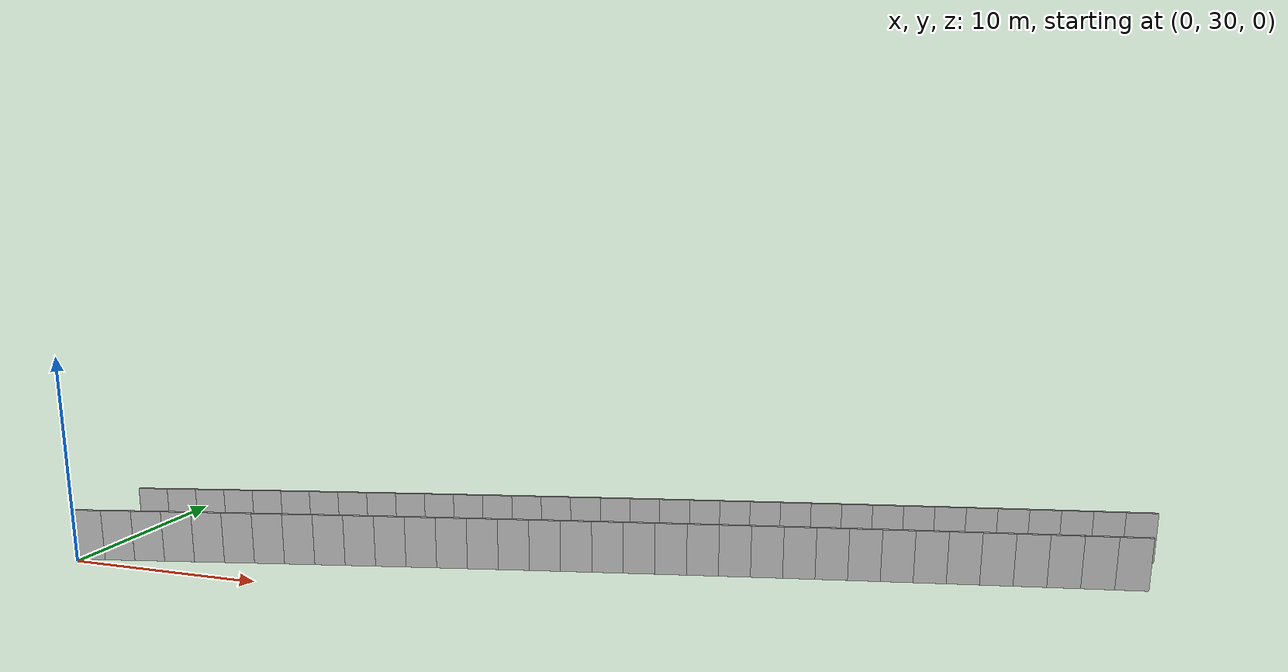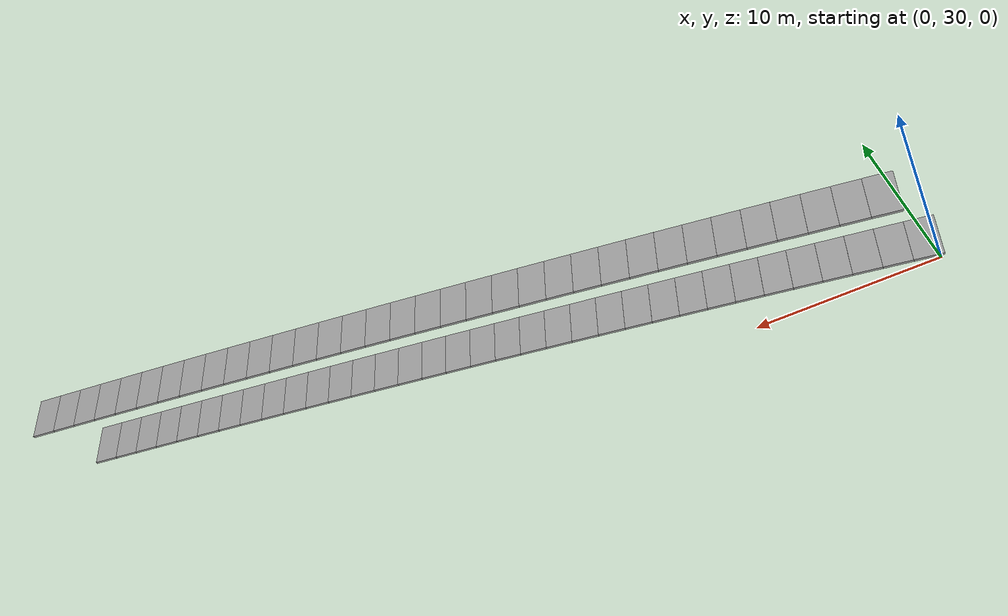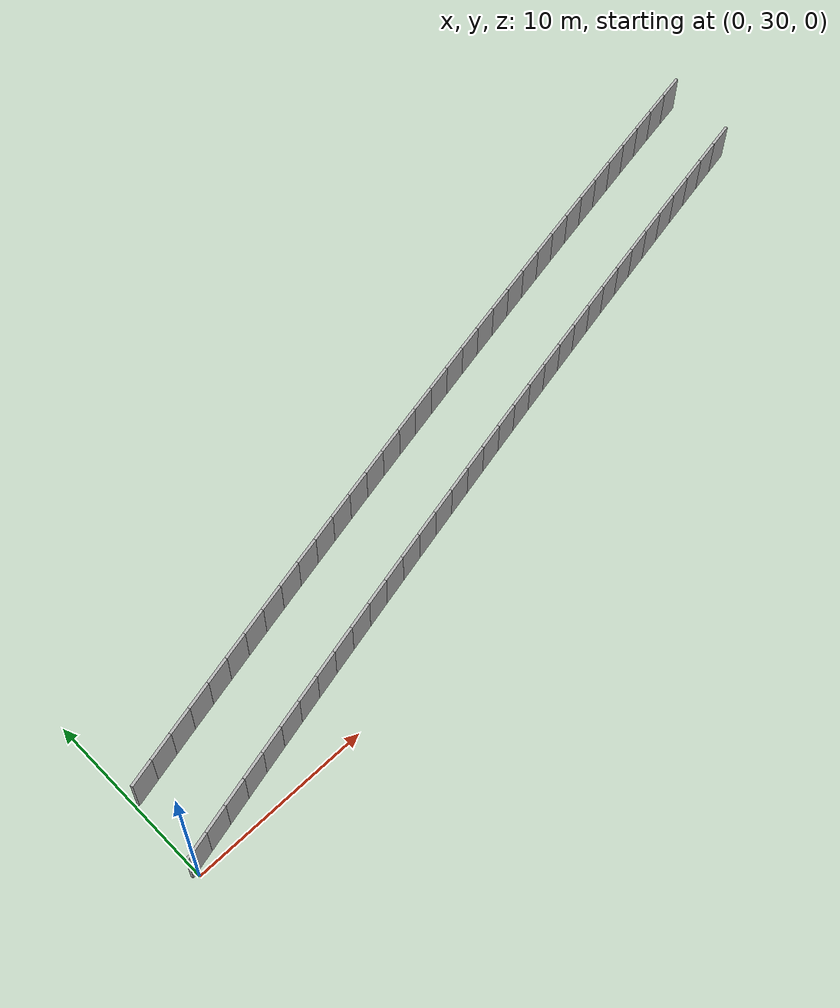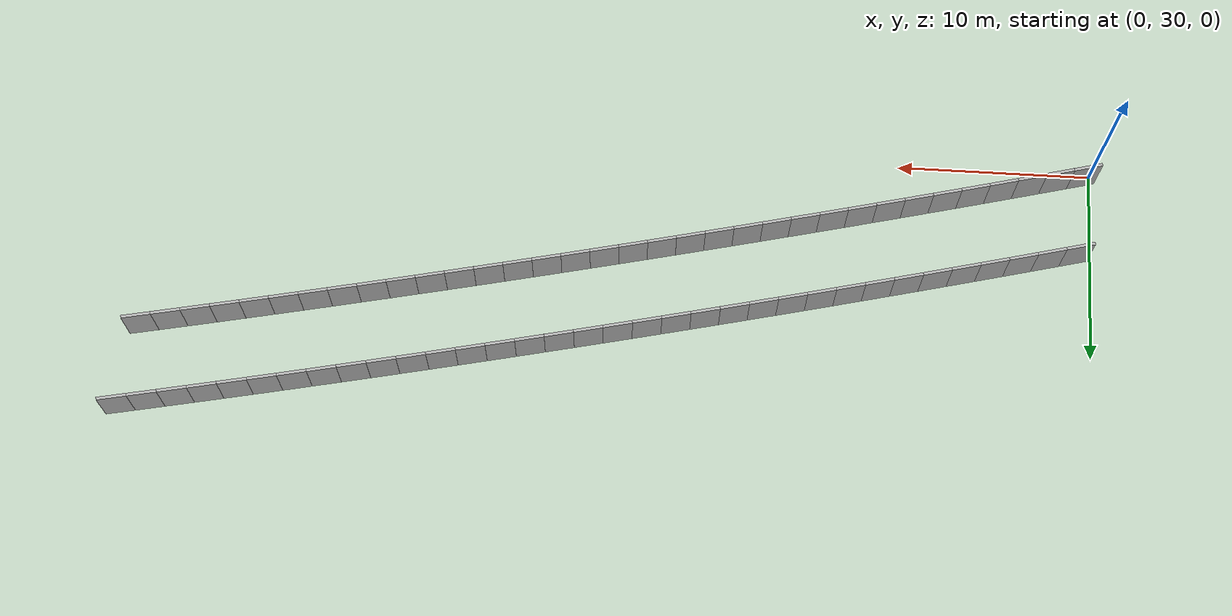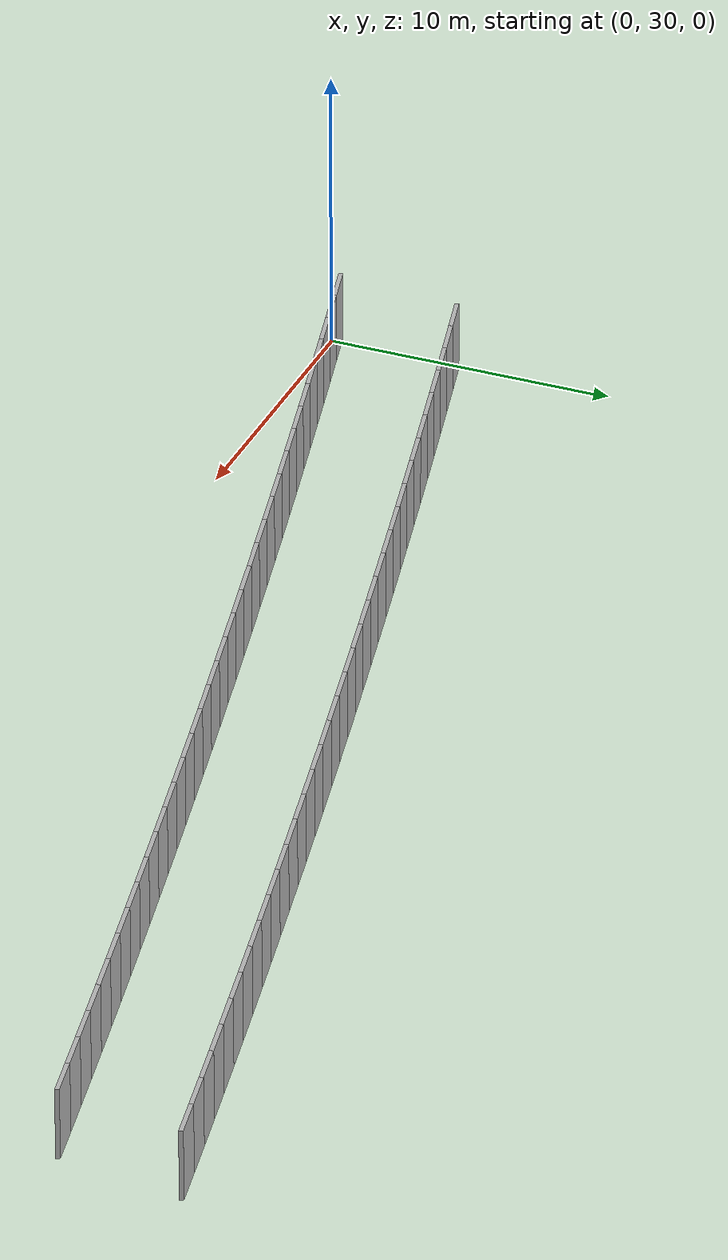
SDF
<?xml version="1.0" ?>
<sdf version="1.6">
  <model name="sps_1946">
    <pose frame="">0 0 0 0 -0 0</pose>
    <static>1</static>
    <self_collide>0</self_collide>
    <allow_auto_disable>0</allow_auto_disable>
    <link name="Wall2987">
      <kinematic>0</kinematic>
      <gravity>1</gravity>
      <self_collide>0</self_collide>
      <collision name="collision">
        <geometry>
          <box>
            <size>1.49635 0.15 2.5</size>
          </box>
        </geometry>
        <pose frame="">0 0 0 0 -0 0</pose>
      </collision>
      <visual name="visual">
        <geometry>
          <box>
            <size>1.49635 0.15 2.5</size>
          </box>
        </geometry>
        <pose frame="">0 0 0 0 -0 0</pose>
        <cast_shadows>1</cast_shadows>
        <transparency>0.0</transparency>
      </visual>
      <pose frame="">48.6193 41.263 1.25 0 0 -2.94586</pose>
    </link>
    <link name="Wall2988">
      <kinematic>0</kinematic>
      <gravity>1</gravity>
      <self_collide>0</self_collide>
      <collision name="collision">
        <geometry>
          <box>
            <size>1.49668 0.15 2.5</size>
          </box>
        </geometry>
        <pose frame="">0 0 0 0 -0 0</pose>
      </collision>
      <visual name="visual">
        <geometry>
          <box>
            <size>1.49668 0.15 2.5</size>
          </box>
        </geometry>
        <pose frame="">0 0 0 0 -0 0</pose>
        <cast_shadows>1</cast_shadows>
        <transparency>0.0</transparency>
      </visual>
      <pose frame="">47.1517 40.9707 1.25 0 0 -2.94412</pose>
    </link>
    <link name="Wall2989">
      <kinematic>0</kinematic>
      <gravity>1</gravity>
      <self_collide>0</self_collide>
      <collision name="collision">
        <geometry>
          <box>
            <size>1.49624 0.15 2.5</size>
          </box>
        </geometry>
        <pose frame="">0 0 0 0 -0 0</pose>
      </collision>
      <visual name="visual">
        <geometry>
          <box>
            <size>1.49624 0.15 2.5</size>
          </box>
        </geometry>
        <pose frame="">0 0 0 0 -0 0</pose>
        <cast_shadows>1</cast_shadows>
        <transparency>0.0</transparency>
      </visual>
      <pose frame="">45.6845 40.6762 1.25 0 0 -2.94289</pose>
    </link>
    <link name="Wall2990">
      <kinematic>0</kinematic>
      <gravity>1</gravity>
      <self_collide>0</self_collide>
      <collision name="collision">
        <geometry>
          <box>
            <size>1.49663 0.15 2.5</size>
          </box>
        </geometry>
        <pose frame="">0 0 0 0 -0 0</pose>
      </collision>
      <visual name="visual">
        <geometry>
          <box>
            <size>1.49663 0.15 2.5</size>
          </box>
        </geometry>
        <pose frame="">0 0 0 0 -0 0</pose>
        <cast_shadows>1</cast_shadows>
        <transparency>0.0</transparency>
      </visual>
      <pose frame="">44.2178 40.3794 1.25 0 0 -2.94099</pose>
    </link>
    <link name="Wall2991">
      <kinematic>0</kinematic>
      <gravity>1</gravity>
      <self_collide>0</self_collide>
      <collision name="collision">
        <geometry>
          <box>
            <size>1.49647 0.15 2.5</size>
          </box>
        </geometry>
        <pose frame="">0 0 0 0 -0 0</pose>
      </collision>
      <visual name="visual">
        <geometry>
          <box>
            <size>1.49647 0.15 2.5</size>
          </box>
        </geometry>
        <pose frame="">0 0 0 0 -0 0</pose>
        <cast_shadows>1</cast_shadows>
        <transparency>0.0</transparency>
      </visual>
      <pose frame="">42.7515 40.0801 1.25 0 0 -2.93947</pose>
    </link>
    <link name="Wall2992">
      <kinematic>0</kinematic>
      <gravity>1</gravity>
      <self_collide>0</self_collide>
      <collision name="collision">
        <geometry>
          <box>
            <size>1.49653 0.15 2.5</size>
          </box>
        </geometry>
        <pose frame="">0 0 0 0 -0 0</pose>
      </collision>
      <visual name="visual">
        <geometry>
          <box>
            <size>1.49653 0.15 2.5</size>
          </box>
        </geometry>
        <pose frame="">0 0 0 0 -0 0</pose>
        <cast_shadows>1</cast_shadows>
        <transparency>0.0</transparency>
      </visual>
      <pose frame="">41.2857 39.7785 1.25 0 0 -2.93785</pose>
    </link>
    <link name="Wall2993">
      <kinematic>0</kinematic>
      <gravity>1</gravity>
      <self_collide>0</self_collide>
      <collision name="collision">
        <geometry>
          <box>
            <size>1.49647 0.15 2.5</size>
          </box>
        </geometry>
        <pose frame="">0 0 0 0 -0 0</pose>
      </collision>
      <visual name="visual">
        <geometry>
          <box>
            <size>1.49647 0.15 2.5</size>
          </box>
        </geometry>
        <pose frame="">0 0 0 0 -0 0</pose>
        <cast_shadows>1</cast_shadows>
        <transparency>0.0</transparency>
      </visual>
      <pose frame="">39.8204 39.4745 1.25 0 0 -2.93622</pose>
    </link>
    <link name="Wall2994">
      <kinematic>0</kinematic>
      <gravity>1</gravity>
      <self_collide>0</self_collide>
      <collision name="collision">
        <geometry>
          <box>
            <size>1.49652 0.15 2.5</size>
          </box>
        </geometry>
        <pose frame="">0 0 0 0 -0 0</pose>
      </collision>
      <visual name="visual">
        <geometry>
          <box>
            <size>1.49652 0.15 2.5</size>
          </box>
        </geometry>
        <pose frame="">0 0 0 0 -0 0</pose>
        <cast_shadows>1</cast_shadows>
        <transparency>0.0</transparency>
      </visual>
      <pose frame="">38.3556 39.1682 1.25 0 0 -2.93469</pose>
    </link>
    <link name="Wall2995">
      <kinematic>0</kinematic>
      <gravity>1</gravity>
      <self_collide>0</self_collide>
      <collision name="collision">
        <geometry>
          <box>
            <size>1.49636 0.15 2.5</size>
          </box>
        </geometry>
        <pose frame="">0 0 0 0 -0 0</pose>
      </collision>
      <visual name="visual">
        <geometry>
          <box>
            <size>1.49636 0.15 2.5</size>
          </box>
        </geometry>
        <pose frame="">0 0 0 0 -0 0</pose>
        <cast_shadows>1</cast_shadows>
        <transparency>0.0</transparency>
      </visual>
      <pose frame="">36.8913 38.8597 1.25 0 0 -2.93321</pose>
    </link>
    <link name="Wall2996">
      <kinematic>0</kinematic>
      <gravity>1</gravity>
      <self_collide>0</self_collide>
      <collision name="collision">
        <geometry>
          <box>
            <size>1.49651 0.15 2.5</size>
          </box>
        </geometry>
        <pose frame="">0 0 0 0 -0 0</pose>
      </collision>
      <visual name="visual">
        <geometry>
          <box>
            <size>1.49651 0.15 2.5</size>
          </box>
        </geometry>
        <pose frame="">0 0 0 0 -0 0</pose>
        <cast_shadows>1</cast_shadows>
        <transparency>0.0</transparency>
      </visual>
      <pose frame="">35.4275 38.5489 1.25 0 0 -2.93156</pose>
    </link>
    <link name="Wall2997">
      <kinematic>0</kinematic>
      <gravity>1</gravity>
      <self_collide>0</self_collide>
      <collision name="collision">
        <geometry>
          <box>
            <size>1.49659 0.15 2.5</size>
          </box>
        </geometry>
        <pose frame="">0 0 0 0 -0 0</pose>
      </collision>
      <visual name="visual">
        <geometry>
          <box>
            <size>1.49659 0.15 2.5</size>
          </box>
        </geometry>
        <pose frame="">0 0 0 0 -0 0</pose>
        <cast_shadows>1</cast_shadows>
        <transparency>0.0</transparency>
      </visual>
      <pose frame="">33.964 38.2357 1.25 0 0 -2.92994</pose>
    </link>
    <link name="Wall2998">
      <kinematic>0</kinematic>
      <gravity>1</gravity>
      <self_collide>0</self_collide>
      <collision name="collision">
        <geometry>
          <box>
            <size>1.49651 0.15 2.5</size>
          </box>
        </geometry>
        <pose frame="">0 0 0 0 -0 0</pose>
      </collision>
      <visual name="visual">
        <geometry>
          <box>
            <size>1.49651 0.15 2.5</size>
          </box>
        </geometry>
        <pose frame="">0 0 0 0 -0 0</pose>
        <cast_shadows>1</cast_shadows>
        <transparency>0.0</transparency>
      </visual>
      <pose frame="">32.5012 37.9201 1.25 0 0 -2.92826</pose>
    </link>
    <link name="Wall2999">
      <kinematic>0</kinematic>
      <gravity>1</gravity>
      <self_collide>0</self_collide>
      <collision name="collision">
        <geometry>
          <box>
            <size>1.49661 0.15 2.5</size>
          </box>
        </geometry>
        <pose frame="">0 0 0 0 -0 0</pose>
      </collision>
      <visual name="visual">
        <geometry>
          <box>
            <size>1.49661 0.15 2.5</size>
          </box>
        </geometry>
        <pose frame="">0 0 0 0 -0 0</pose>
        <cast_shadows>1</cast_shadows>
        <transparency>0.0</transparency>
      </visual>
      <pose frame="">31.0387 37.6022 1.25 0 0 -2.92682</pose>
    </link>
    <link name="Wall3000">
      <kinematic>0</kinematic>
      <gravity>1</gravity>
      <self_collide>0</self_collide>
      <collision name="collision">
        <geometry>
          <box>
            <size>1.49649 0.15 2.5</size>
          </box>
        </geometry>
        <pose frame="">0 0 0 0 -0 0</pose>
      </collision>
      <visual name="visual">
        <geometry>
          <box>
            <size>1.49649 0.15 2.5</size>
          </box>
        </geometry>
        <pose frame="">0 0 0 0 -0 0</pose>
        <cast_shadows>1</cast_shadows>
        <transparency>0.0</transparency>
      </visual>
      <pose frame="">29.5768 37.2821 1.25 0 0 -2.92526</pose>
    </link>
    <link name="Wall3001">
      <kinematic>0</kinematic>
      <gravity>1</gravity>
      <self_collide>0</self_collide>
      <collision name="collision">
        <geometry>
          <box>
            <size>1.49641 0.15 2.5</size>
          </box>
        </geometry>
        <pose frame="">0 0 0 0 -0 0</pose>
      </collision>
      <visual name="visual">
        <geometry>
          <box>
            <size>1.49641 0.15 2.5</size>
          </box>
        </geometry>
        <pose frame="">0 0 0 0 -0 0</pose>
        <cast_shadows>1</cast_shadows>
        <transparency>0.0</transparency>
      </visual>
      <pose frame="">28.1155 36.9597 1.25 0 0 -2.92361</pose>
    </link>
    <link name="Wall3002">
      <kinematic>0</kinematic>
      <gravity>1</gravity>
      <self_collide>0</self_collide>
      <collision name="collision">
        <geometry>
          <box>
            <size>1.49651 0.15 2.5</size>
          </box>
        </geometry>
        <pose frame="">0 0 0 0 -0 0</pose>
      </collision>
      <visual name="visual">
        <geometry>
          <box>
            <size>1.49651 0.15 2.5</size>
          </box>
        </geometry>
        <pose frame="">0 0 0 0 -0 0</pose>
        <cast_shadows>1</cast_shadows>
        <transparency>0.0</transparency>
      </visual>
      <pose frame="">26.6547 36.6349 1.25 0 0 -2.922</pose>
    </link>
    <link name="Wall3003">
      <kinematic>0</kinematic>
      <gravity>1</gravity>
      <self_collide>0</self_collide>
      <collision name="collision">
        <geometry>
          <box>
            <size>1.49645 0.15 2.5</size>
          </box>
        </geometry>
        <pose frame="">0 0 0 0 -0 0</pose>
      </collision>
      <visual name="visual">
        <geometry>
          <box>
            <size>1.49645 0.15 2.5</size>
          </box>
        </geometry>
        <pose frame="">0 0 0 0 -0 0</pose>
        <cast_shadows>1</cast_shadows>
        <transparency>0.0</transparency>
      </visual>
      <pose frame="">25.1944 36.3078 1.25 0 0 -2.92049</pose>
    </link>
    <link name="Wall3004">
      <kinematic>0</kinematic>
      <gravity>1</gravity>
      <self_collide>0</self_collide>
      <collision name="collision">
        <geometry>
          <box>
            <size>1.49657 0.15 2.5</size>
          </box>
        </geometry>
        <pose frame="">0 0 0 0 -0 0</pose>
      </collision>
      <visual name="visual">
        <geometry>
          <box>
            <size>1.49657 0.15 2.5</size>
          </box>
        </geometry>
        <pose frame="">0 0 0 0 -0 0</pose>
        <cast_shadows>1</cast_shadows>
        <transparency>0.0</transparency>
      </visual>
      <pose frame="">23.7346 35.9784 1.25 0 0 -2.91883</pose>
    </link>
    <link name="Wall3005">
      <kinematic>0</kinematic>
      <gravity>1</gravity>
      <self_collide>0</self_collide>
      <collision name="collision">
        <geometry>
          <box>
            <size>1.49637 0.15 2.5</size>
          </box>
        </geometry>
        <pose frame="">0 0 0 0 -0 0</pose>
      </collision>
      <visual name="visual">
        <geometry>
          <box>
            <size>1.49637 0.15 2.5</size>
          </box>
        </geometry>
        <pose frame="">0 0 0 0 -0 0</pose>
        <cast_shadows>1</cast_shadows>
        <transparency>0.0</transparency>
      </visual>
      <pose frame="">22.2754 35.6469 1.25 0 0 -2.91759</pose>
    </link>
    <link name="Wall3006">
      <kinematic>0</kinematic>
      <gravity>1</gravity>
      <self_collide>0</self_collide>
      <collision name="collision">
        <geometry>
          <box>
            <size>1.49644 0.15 2.5</size>
          </box>
        </geometry>
        <pose frame="">0 0 0 0 -0 0</pose>
      </collision>
      <visual name="visual">
        <geometry>
          <box>
            <size>1.49644 0.15 2.5</size>
          </box>
        </geometry>
        <pose frame="">0 0 0 0 -0 0</pose>
        <cast_shadows>1</cast_shadows>
        <transparency>0.0</transparency>
      </visual>
      <pose frame="">20.8167 35.313 1.25 0 0 -2.91555</pose>
    </link>
    <link name="Wall3007">
      <kinematic>0</kinematic>
      <gravity>1</gravity>
      <self_collide>0</self_collide>
      <collision name="collision">
        <geometry>
          <box>
            <size>1.49654 0.15 2.5</size>
          </box>
        </geometry>
        <pose frame="">0 0 0 0 -0 0</pose>
      </collision>
      <visual name="visual">
        <geometry>
          <box>
            <size>1.49654 0.15 2.5</size>
          </box>
        </geometry>
        <pose frame="">0 0 0 0 -0 0</pose>
        <cast_shadows>1</cast_shadows>
        <transparency>0.0</transparency>
      </visual>
      <pose frame="">19.3585 34.9766 1.25 0 0 -2.91418</pose>
    </link>
    <link name="Wall3008">
      <kinematic>0</kinematic>
      <gravity>1</gravity>
      <self_collide>0</self_collide>
      <collision name="collision">
        <geometry>
          <box>
            <size>1.49652 0.15 2.5</size>
          </box>
        </geometry>
        <pose frame="">0 0 0 0 -0 0</pose>
      </collision>
      <visual name="visual">
        <geometry>
          <box>
            <size>1.49652 0.15 2.5</size>
          </box>
        </geometry>
        <pose frame="">0 0 0 0 -0 0</pose>
        <cast_shadows>1</cast_shadows>
        <transparency>0.0</transparency>
      </visual>
      <pose frame="">17.9008 34.6379 1.25 0 0 -2.91242</pose>
    </link>
    <link name="Wall3009">
      <kinematic>0</kinematic>
      <gravity>1</gravity>
      <self_collide>0</self_collide>
      <collision name="collision">
        <geometry>
          <box>
            <size>1.49646 0.15 2.5</size>
          </box>
        </geometry>
        <pose frame="">0 0 0 0 -0 0</pose>
      </collision>
      <visual name="visual">
        <geometry>
          <box>
            <size>1.49646 0.15 2.5</size>
          </box>
        </geometry>
        <pose frame="">0 0 0 0 -0 0</pose>
        <cast_shadows>1</cast_shadows>
        <transparency>0.0</transparency>
      </visual>
      <pose frame="">16.4437 34.2969 1.25 0 0 -2.91099</pose>
    </link>
    <link name="Wall3010">
      <kinematic>0</kinematic>
      <gravity>1</gravity>
      <self_collide>0</self_collide>
      <collision name="collision">
        <geometry>
          <box>
            <size>1.49652 0.15 2.5</size>
          </box>
        </geometry>
        <pose frame="">0 0 0 0 -0 0</pose>
      </collision>
      <visual name="visual">
        <geometry>
          <box>
            <size>1.49652 0.15 2.5</size>
          </box>
        </geometry>
        <pose frame="">0 0 0 0 -0 0</pose>
        <cast_shadows>1</cast_shadows>
        <transparency>0.0</transparency>
      </visual>
      <pose frame="">14.9871 33.9537 1.25 0 0 -2.9094</pose>
    </link>
    <link name="Wall3011">
      <kinematic>0</kinematic>
      <gravity>1</gravity>
      <self_collide>0</self_collide>
      <collision name="collision">
        <geometry>
          <box>
            <size>1.49637 0.15 2.5</size>
          </box>
        </geometry>
        <pose frame="">0 0 0 0 -0 0</pose>
      </collision>
      <visual name="visual">
        <geometry>
          <box>
            <size>1.49637 0.15 2.5</size>
          </box>
        </geometry>
        <pose frame="">0 0 0 0 -0 0</pose>
        <cast_shadows>1</cast_shadows>
        <transparency>0.0</transparency>
      </visual>
      <pose frame="">13.5311 33.6081 1.25 0 0 -2.9077</pose>
    </link>
    <link name="Wall3012">
      <kinematic>0</kinematic>
      <gravity>1</gravity>
      <self_collide>0</self_collide>
      <collision name="collision">
        <geometry>
          <box>
            <size>1.49664 0.15 2.5</size>
          </box>
        </geometry>
        <pose frame="">0 0 0 0 -0 0</pose>
      </collision>
      <visual name="visual">
        <geometry>
          <box>
            <size>1.49664 0.15 2.5</size>
          </box>
        </geometry>
        <pose frame="">0 0 0 0 -0 0</pose>
        <cast_shadows>1</cast_shadows>
        <transparency>0.0</transparency>
      </visual>
      <pose frame="">12.0756 33.2602 1.25 0 0 -2.90624</pose>
    </link>
    <link name="Wall3013">
      <kinematic>0</kinematic>
      <gravity>1</gravity>
      <self_collide>0</self_collide>
      <collision name="collision">
        <geometry>
          <box>
            <size>1.49668 0.15 2.5</size>
          </box>
        </geometry>
        <pose frame="">0 0 0 0 -0 0</pose>
      </collision>
      <visual name="visual">
        <geometry>
          <box>
            <size>1.49668 0.15 2.5</size>
          </box>
        </geometry>
        <pose frame="">0 0 0 0 -0 0</pose>
        <cast_shadows>1</cast_shadows>
        <transparency>0.0</transparency>
      </visual>
      <pose frame="">10.6204 32.91 1.25 0 0 -2.90457</pose>
    </link>
    <link name="Wall3014">
      <kinematic>0</kinematic>
      <gravity>1</gravity>
      <self_collide>0</self_collide>
      <collision name="collision">
        <geometry>
          <box>
            <size>1.49635 0.15 2.5</size>
          </box>
        </geometry>
        <pose frame="">0 0 0 0 -0 0</pose>
      </collision>
      <visual name="visual">
        <geometry>
          <box>
            <size>1.49635 0.15 2.5</size>
          </box>
        </geometry>
        <pose frame="">0 0 0 0 -0 0</pose>
        <cast_shadows>1</cast_shadows>
        <transparency>0.0</transparency>
      </visual>
      <pose frame="">9.16604 32.5575 1.25 0 0 -2.90304</pose>
    </link>
    <link name="Wall3015">
      <kinematic>0</kinematic>
      <gravity>1</gravity>
      <self_collide>0</self_collide>
      <collision name="collision">
        <geometry>
          <box>
            <size>1.49658 0.15 2.5</size>
          </box>
        </geometry>
        <pose frame="">0 0 0 0 -0 0</pose>
      </collision>
      <visual name="visual">
        <geometry>
          <box>
            <size>1.49658 0.15 2.5</size>
          </box>
        </geometry>
        <pose frame="">0 0 0 0 -0 0</pose>
        <cast_shadows>1</cast_shadows>
        <transparency>0.0</transparency>
      </visual>
      <pose frame="">7.71224 32.2027 1.25 0 0 -2.9014</pose>
    </link>
    <link name="Wall3016">
      <kinematic>0</kinematic>
      <gravity>1</gravity>
      <self_collide>0</self_collide>
      <collision name="collision">
        <geometry>
          <box>
            <size>1.49649 0.15 2.5</size>
          </box>
        </geometry>
        <pose frame="">0 0 0 0 -0 0</pose>
      </collision>
      <visual name="visual">
        <geometry>
          <box>
            <size>1.49649 0.15 2.5</size>
          </box>
        </geometry>
        <pose frame="">0 0 0 0 -0 0</pose>
        <cast_shadows>1</cast_shadows>
        <transparency>0.0</transparency>
      </visual>
      <pose frame="">6.25893 31.8456 1.25 0 0 -2.89992</pose>
    </link>
    <link name="Wall3017">
      <kinematic>0</kinematic>
      <gravity>1</gravity>
      <self_collide>0</self_collide>
      <collision name="collision">
        <geometry>
          <box>
            <size>1.49649 0.15 2.5</size>
          </box>
        </geometry>
        <pose frame="">0 0 0 0 -0 0</pose>
      </collision>
      <visual name="visual">
        <geometry>
          <box>
            <size>1.49649 0.15 2.5</size>
          </box>
        </geometry>
        <pose frame="">0 0 0 0 -0 0</pose>
        <cast_shadows>1</cast_shadows>
        <transparency>0.0</transparency>
      </visual>
      <pose frame="">4.80624 31.4862 1.25 0 0 -2.89824</pose>
    </link>
    <link name="Wall3018">
      <kinematic>0</kinematic>
      <gravity>1</gravity>
      <self_collide>0</self_collide>
      <collision name="collision">
        <geometry>
          <box>
            <size>1.49644 0.15 2.5</size>
          </box>
        </geometry>
        <pose frame="">0 0 0 0 -0 0</pose>
      </collision>
      <visual name="visual">
        <geometry>
          <box>
            <size>1.49644 0.15 2.5</size>
          </box>
        </geometry>
        <pose frame="">0 0 0 0 -0 0</pose>
        <cast_shadows>1</cast_shadows>
        <transparency>0.0</transparency>
      </visual>
      <pose frame="">3.35415 31.1245 1.25 0 0 -2.89667</pose>
    </link>
    <link name="Wall3019">
      <kinematic>0</kinematic>
      <gravity>1</gravity>
      <self_collide>0</self_collide>
      <collision name="collision">
        <geometry>
          <box>
            <size>1.49641 0.15 2.5</size>
          </box>
        </geometry>
        <pose frame="">0 0 0 0 -0 0</pose>
      </collision>
      <visual name="visual">
        <geometry>
          <box>
            <size>1.49641 0.15 2.5</size>
          </box>
        </geometry>
        <pose frame="">0 0 0 0 -0 0</pose>
        <cast_shadows>1</cast_shadows>
        <transparency>0.0</transparency>
      </visual>
      <pose frame="">1.90267 30.7605 1.25 0 0 -2.89507</pose>
    </link>
    <link name="Wall3020">
      <kinematic>0</kinematic>
      <gravity>1</gravity>
      <self_collide>0</self_collide>
      <collision name="collision">
        <geometry>
          <box>
            <size>1.49637 0.15 2.5</size>
          </box>
        </geometry>
        <pose frame="">0 0 0 0 -0 0</pose>
      </collision>
      <visual name="visual">
        <geometry>
          <box>
            <size>1.49637 0.15 2.5</size>
          </box>
        </geometry>
        <pose frame="">0 0 0 0 -0 0</pose>
        <cast_shadows>1</cast_shadows>
        <transparency>0.0</transparency>
      </visual>
      <pose frame="">0.451774 30.3943 1.25 0 0 -2.89368</pose>
    </link>
    <link name="Wall5597">
      <kinematic>0</kinematic>
      <gravity>1</gravity>
      <self_collide>0</self_collide>
      <collision name="collision">
        <geometry>
          <box>
            <size>1.50303 0.15 2.5</size>
          </box>
        </geometry>
        <pose frame="">0 0 0 0 -0 0</pose>
      </collision>
      <visual name="visual">
        <geometry>
          <box>
            <size>1.50303 0.15 2.5</size>
          </box>
        </geometry>
        <pose frame="">0 0 0 0 -0 0</pose>
        <cast_shadows>1</cast_shadows>
        <transparency>0.0</transparency>
      </visual>
      <pose frame="">49.2831 45.6137 1.25 0 0 -2.94745</pose>
    </link>
    <link name="Wall5598">
      <kinematic>0</kinematic>
      <gravity>1</gravity>
      <self_collide>0</self_collide>
      <collision name="collision">
        <geometry>
          <box>
            <size>1.50296 0.15 2.5</size>
          </box>
        </geometry>
        <pose frame="">0 0 0 0 -0 0</pose>
      </collision>
      <visual name="visual">
        <geometry>
          <box>
            <size>1.50296 0.15 2.5</size>
          </box>
        </geometry>
        <pose frame="">0 0 0 0 -0 0</pose>
        <cast_shadows>1</cast_shadows>
        <transparency>0.0</transparency>
      </visual>
      <pose frame="">47.8086 45.3225 1.25 0 0 -2.94578</pose>
    </link>
    <link name="Wall5599">
      <kinematic>0</kinematic>
      <gravity>1</gravity>
      <self_collide>0</self_collide>
      <collision name="collision">
        <geometry>
          <box>
            <size>1.50311 0.15 2.5</size>
          </box>
        </geometry>
        <pose frame="">0 0 0 0 -0 0</pose>
      </collision>
      <visual name="visual">
        <geometry>
          <box>
            <size>1.50311 0.15 2.5</size>
          </box>
        </geometry>
        <pose frame="">0 0 0 0 -0 0</pose>
        <cast_shadows>1</cast_shadows>
        <transparency>0.0</transparency>
      </visual>
      <pose frame="">46.3344 45.0291 1.25 0 0 -2.94448</pose>
    </link>
    <link name="Wall5600">
      <kinematic>0</kinematic>
      <gravity>1</gravity>
      <self_collide>0</self_collide>
      <collision name="collision">
        <geometry>
          <box>
            <size>1.50289 0.15 2.5</size>
          </box>
        </geometry>
        <pose frame="">0 0 0 0 -0 0</pose>
      </collision>
      <visual name="visual">
        <geometry>
          <box>
            <size>1.50289 0.15 2.5</size>
          </box>
        </geometry>
        <pose frame="">0 0 0 0 -0 0</pose>
        <cast_shadows>1</cast_shadows>
        <transparency>0.0</transparency>
      </visual>
      <pose frame="">44.8608 44.7333 1.25 0 0 -2.9425</pose>
    </link>
    <link name="Wall5601">
      <kinematic>0</kinematic>
      <gravity>1</gravity>
      <self_collide>0</self_collide>
      <collision name="collision">
        <geometry>
          <box>
            <size>1.50308 0.15 2.5</size>
          </box>
        </geometry>
        <pose frame="">0 0 0 0 -0 0</pose>
      </collision>
      <visual name="visual">
        <geometry>
          <box>
            <size>1.50308 0.15 2.5</size>
          </box>
        </geometry>
        <pose frame="">0 0 0 0 -0 0</pose>
        <cast_shadows>1</cast_shadows>
        <transparency>0.0</transparency>
      </visual>
      <pose frame="">43.3877 44.435 1.25 0 0 -2.94108</pose>
    </link>
    <link name="Wall5602">
      <kinematic>0</kinematic>
      <gravity>1</gravity>
      <self_collide>0</self_collide>
      <collision name="collision">
        <geometry>
          <box>
            <size>1.50321 0.15 2.5</size>
          </box>
        </geometry>
        <pose frame="">0 0 0 0 -0 0</pose>
      </collision>
      <visual name="visual">
        <geometry>
          <box>
            <size>1.50321 0.15 2.5</size>
          </box>
        </geometry>
        <pose frame="">0 0 0 0 -0 0</pose>
        <cast_shadows>1</cast_shadows>
        <transparency>0.0</transparency>
      </visual>
      <pose frame="">41.915 44.1344 1.25 0 0 -2.93944</pose>
    </link>
    <link name="Wall5603">
      <kinematic>0</kinematic>
      <gravity>1</gravity>
      <self_collide>0</self_collide>
      <collision name="collision">
        <geometry>
          <box>
            <size>1.50315 0.15 2.5</size>
          </box>
        </geometry>
        <pose frame="">0 0 0 0 -0 0</pose>
      </collision>
      <visual name="visual">
        <geometry>
          <box>
            <size>1.50315 0.15 2.5</size>
          </box>
        </geometry>
        <pose frame="">0 0 0 0 -0 0</pose>
        <cast_shadows>1</cast_shadows>
        <transparency>0.0</transparency>
      </visual>
      <pose frame="">40.4426 43.8314 1.25 0 0 -2.93781</pose>
    </link>
    <link name="Wall5604">
      <kinematic>0</kinematic>
      <gravity>1</gravity>
      <self_collide>0</self_collide>
      <collision name="collision">
        <geometry>
          <box>
            <size>1.50312 0.15 2.5</size>
          </box>
        </geometry>
        <pose frame="">0 0 0 0 -0 0</pose>
      </collision>
      <visual name="visual">
        <geometry>
          <box>
            <size>1.50312 0.15 2.5</size>
          </box>
        </geometry>
        <pose frame="">0 0 0 0 -0 0</pose>
        <cast_shadows>1</cast_shadows>
        <transparency>0.0</transparency>
      </visual>
      <pose frame="">38.9708 43.5261 1.25 0 0 -2.93631</pose>
    </link>
    <link name="Wall5605">
      <kinematic>0</kinematic>
      <gravity>1</gravity>
      <self_collide>0</self_collide>
      <collision name="collision">
        <geometry>
          <box>
            <size>1.50289 0.15 2.5</size>
          </box>
        </geometry>
        <pose frame="">0 0 0 0 -0 0</pose>
      </collision>
      <visual name="visual">
        <geometry>
          <box>
            <size>1.50289 0.15 2.5</size>
          </box>
        </geometry>
        <pose frame="">0 0 0 0 -0 0</pose>
        <cast_shadows>1</cast_shadows>
        <transparency>0.0</transparency>
      </visual>
      <pose frame="">37.4997 43.2185 1.25 0 0 -2.93466</pose>
    </link>
    <link name="Wall5606">
      <kinematic>0</kinematic>
      <gravity>1</gravity>
      <self_collide>0</self_collide>
      <collision name="collision">
        <geometry>
          <box>
            <size>1.50315 0.15 2.5</size>
          </box>
        </geometry>
        <pose frame="">0 0 0 0 -0 0</pose>
      </collision>
      <visual name="visual">
        <geometry>
          <box>
            <size>1.50315 0.15 2.5</size>
          </box>
        </geometry>
        <pose frame="">0 0 0 0 -0 0</pose>
        <cast_shadows>1</cast_shadows>
        <transparency>0.0</transparency>
      </visual>
      <pose frame="">36.029 42.9085 1.25 0 0 -2.93304</pose>
    </link>
    <link name="Wall5607">
      <kinematic>0</kinematic>
      <gravity>1</gravity>
      <self_collide>0</self_collide>
      <collision name="collision">
        <geometry>
          <box>
            <size>1.50307 0.15 2.5</size>
          </box>
        </geometry>
        <pose frame="">0 0 0 0 -0 0</pose>
      </collision>
      <visual name="visual">
        <geometry>
          <box>
            <size>1.50307 0.15 2.5</size>
          </box>
        </geometry>
        <pose frame="">0 0 0 0 -0 0</pose>
        <cast_shadows>1</cast_shadows>
        <transparency>0.0</transparency>
      </visual>
      <pose frame="">34.5586 42.5962 1.25 0 0 -2.93153</pose>
    </link>
    <link name="Wall5608">
      <kinematic>0</kinematic>
      <gravity>1</gravity>
      <self_collide>0</self_collide>
      <collision name="collision">
        <geometry>
          <box>
            <size>1.50315 0.15 2.5</size>
          </box>
        </geometry>
        <pose frame="">0 0 0 0 -0 0</pose>
      </collision>
      <visual name="visual">
        <geometry>
          <box>
            <size>1.50315 0.15 2.5</size>
          </box>
        </geometry>
        <pose frame="">0 0 0 0 -0 0</pose>
        <cast_shadows>1</cast_shadows>
        <transparency>0.0</transparency>
      </visual>
      <pose frame="">33.0888 42.2816 1.25 0 0 -2.92993</pose>
    </link>
    <link name="Wall5609">
      <kinematic>0</kinematic>
      <gravity>1</gravity>
      <self_collide>0</self_collide>
      <collision name="collision">
        <geometry>
          <box>
            <size>1.50302 0.15 2.5</size>
          </box>
        </geometry>
        <pose frame="">0 0 0 0 -0 0</pose>
      </collision>
      <visual name="visual">
        <geometry>
          <box>
            <size>1.50302 0.15 2.5</size>
          </box>
        </geometry>
        <pose frame="">0 0 0 0 -0 0</pose>
        <cast_shadows>1</cast_shadows>
        <transparency>0.0</transparency>
      </visual>
      <pose frame="">31.6195 41.9647 1.25 0 0 -2.92841</pose>
    </link>
    <link name="Wall5610">
      <kinematic>0</kinematic>
      <gravity>1</gravity>
      <self_collide>0</self_collide>
      <collision name="collision">
        <geometry>
          <box>
            <size>1.50311 0.15 2.5</size>
          </box>
        </geometry>
        <pose frame="">0 0 0 0 -0 0</pose>
      </collision>
      <visual name="visual">
        <geometry>
          <box>
            <size>1.50311 0.15 2.5</size>
          </box>
        </geometry>
        <pose frame="">0 0 0 0 -0 0</pose>
        <cast_shadows>1</cast_shadows>
        <transparency>0.0</transparency>
      </visual>
      <pose frame="">30.1507 41.6455 1.25 0 0 -2.9268</pose>
    </link>
    <link name="Wall5611">
      <kinematic>0</kinematic>
      <gravity>1</gravity>
      <self_collide>0</self_collide>
      <collision name="collision">
        <geometry>
          <box>
            <size>1.50309 0.15 2.5</size>
          </box>
        </geometry>
        <pose frame="">0 0 0 0 -0 0</pose>
      </collision>
      <visual name="visual">
        <geometry>
          <box>
            <size>1.50309 0.15 2.5</size>
          </box>
        </geometry>
        <pose frame="">0 0 0 0 -0 0</pose>
        <cast_shadows>1</cast_shadows>
        <transparency>0.0</transparency>
      </visual>
      <pose frame="">28.6825 41.3239 1.25 0 0 -2.92514</pose>
    </link>
    <link name="Wall5612">
      <kinematic>0</kinematic>
      <gravity>1</gravity>
      <self_collide>0</self_collide>
      <collision name="collision">
        <geometry>
          <box>
            <size>1.50315 0.15 2.5</size>
          </box>
        </geometry>
        <pose frame="">0 0 0 0 -0 0</pose>
      </collision>
      <visual name="visual">
        <geometry>
          <box>
            <size>1.50315 0.15 2.5</size>
          </box>
        </geometry>
        <pose frame="">0 0 0 0 -0 0</pose>
        <cast_shadows>1</cast_shadows>
        <transparency>0.0</transparency>
      </visual>
      <pose frame="">27.2147 41 1.25 0 0 -2.92365</pose>
    </link>
    <link name="Wall5613">
      <kinematic>0</kinematic>
      <gravity>1</gravity>
      <self_collide>0</self_collide>
      <collision name="collision">
        <geometry>
          <box>
            <size>1.50303 0.15 2.5</size>
          </box>
        </geometry>
        <pose frame="">0 0 0 0 -0 0</pose>
      </collision>
      <visual name="visual">
        <geometry>
          <box>
            <size>1.50303 0.15 2.5</size>
          </box>
        </geometry>
        <pose frame="">0 0 0 0 -0 0</pose>
        <cast_shadows>1</cast_shadows>
        <transparency>0.0</transparency>
      </visual>
      <pose frame="">25.7474 40.6739 1.25 0 0 -2.92214</pose>
    </link>
    <link name="Wall5614">
      <kinematic>0</kinematic>
      <gravity>1</gravity>
      <self_collide>0</self_collide>
      <collision name="collision">
        <geometry>
          <box>
            <size>1.50305 0.15 2.5</size>
          </box>
        </geometry>
        <pose frame="">0 0 0 0 -0 0</pose>
      </collision>
      <visual name="visual">
        <geometry>
          <box>
            <size>1.50305 0.15 2.5</size>
          </box>
        </geometry>
        <pose frame="">0 0 0 0 -0 0</pose>
        <cast_shadows>1</cast_shadows>
        <transparency>0.0</transparency>
      </visual>
      <pose frame="">24.2807 40.3454 1.25 0 0 -2.92039</pose>
    </link>
    <link name="Wall5615">
      <kinematic>0</kinematic>
      <gravity>1</gravity>
      <self_collide>0</self_collide>
      <collision name="collision">
        <geometry>
          <box>
            <size>1.50304 0.15 2.5</size>
          </box>
        </geometry>
        <pose frame="">0 0 0 0 -0 0</pose>
      </collision>
      <visual name="visual">
        <geometry>
          <box>
            <size>1.50304 0.15 2.5</size>
          </box>
        </geometry>
        <pose frame="">0 0 0 0 -0 0</pose>
        <cast_shadows>1</cast_shadows>
        <transparency>0.0</transparency>
      </visual>
      <pose frame="">22.8144 40.0147 1.25 0 0 -2.91914</pose>
    </link>
    <link name="Wall5616">
      <kinematic>0</kinematic>
      <gravity>1</gravity>
      <self_collide>0</self_collide>
      <collision name="collision">
        <geometry>
          <box>
            <size>1.50307 0.15 2.5</size>
          </box>
        </geometry>
        <pose frame="">0 0 0 0 -0 0</pose>
      </collision>
      <visual name="visual">
        <geometry>
          <box>
            <size>1.50307 0.15 2.5</size>
          </box>
        </geometry>
        <pose frame="">0 0 0 0 -0 0</pose>
        <cast_shadows>1</cast_shadows>
        <transparency>0.0</transparency>
      </visual>
      <pose frame="">21.3487 39.6817 1.25 0 0 -2.91723</pose>
    </link>
    <link name="Wall5617">
      <kinematic>0</kinematic>
      <gravity>1</gravity>
      <self_collide>0</self_collide>
      <collision name="collision">
        <geometry>
          <box>
            <size>1.50314 0.15 2.5</size>
          </box>
        </geometry>
        <pose frame="">0 0 0 0 -0 0</pose>
      </collision>
      <visual name="visual">
        <geometry>
          <box>
            <size>1.50314 0.15 2.5</size>
          </box>
        </geometry>
        <pose frame="">0 0 0 0 -0 0</pose>
        <cast_shadows>1</cast_shadows>
        <transparency>0.0</transparency>
      </visual>
      <pose frame="">19.8836 39.3462 1.25 0 0 -2.91574</pose>
    </link>
    <link name="Wall5618">
      <kinematic>0</kinematic>
      <gravity>1</gravity>
      <self_collide>0</self_collide>
      <collision name="collision">
        <geometry>
          <box>
            <size>1.503 0.15 2.5</size>
          </box>
        </geometry>
        <pose frame="">0 0 0 0 -0 0</pose>
      </collision>
      <visual name="visual">
        <geometry>
          <box>
            <size>1.503 0.15 2.5</size>
          </box>
        </geometry>
        <pose frame="">0 0 0 0 -0 0</pose>
        <cast_shadows>1</cast_shadows>
        <transparency>0.0</transparency>
      </visual>
      <pose frame="">18.419 39.0083 1.25 0 0 -2.91397</pose>
    </link>
    <link name="Wall5619">
      <kinematic>0</kinematic>
      <gravity>1</gravity>
      <self_collide>0</self_collide>
      <collision name="collision">
        <geometry>
          <box>
            <size>1.5031 0.15 2.5</size>
          </box>
        </geometry>
        <pose frame="">0 0 0 0 -0 0</pose>
      </collision>
      <visual name="visual">
        <geometry>
          <box>
            <size>1.5031 0.15 2.5</size>
          </box>
        </geometry>
        <pose frame="">0 0 0 0 -0 0</pose>
        <cast_shadows>1</cast_shadows>
        <transparency>0.0</transparency>
      </visual>
      <pose frame="">16.9549 38.668 1.25 0 0 -2.91244</pose>
    </link>
    <link name="Wall5620">
      <kinematic>0</kinematic>
      <gravity>1</gravity>
      <self_collide>0</self_collide>
      <collision name="collision">
        <geometry>
          <box>
            <size>1.50317 0.15 2.5</size>
          </box>
        </geometry>
        <pose frame="">0 0 0 0 -0 0</pose>
      </collision>
      <visual name="visual">
        <geometry>
          <box>
            <size>1.50317 0.15 2.5</size>
          </box>
        </geometry>
        <pose frame="">0 0 0 0 -0 0</pose>
        <cast_shadows>1</cast_shadows>
        <transparency>0.0</transparency>
      </visual>
      <pose frame="">15.4914 38.3255 1.25 0 0 -2.91099</pose>
    </link>
    <link name="Wall5621">
      <kinematic>0</kinematic>
      <gravity>1</gravity>
      <self_collide>0</self_collide>
      <collision name="collision">
        <geometry>
          <box>
            <size>1.50315 0.15 2.5</size>
          </box>
        </geometry>
        <pose frame="">0 0 0 0 -0 0</pose>
      </collision>
      <visual name="visual">
        <geometry>
          <box>
            <size>1.50315 0.15 2.5</size>
          </box>
        </geometry>
        <pose frame="">0 0 0 0 -0 0</pose>
        <cast_shadows>1</cast_shadows>
        <transparency>0.0</transparency>
      </visual>
      <pose frame="">14.0283 37.9808 1.25 0 0 -2.90945</pose>
    </link>
    <link name="Wall5622">
      <kinematic>0</kinematic>
      <gravity>1</gravity>
      <self_collide>0</self_collide>
      <collision name="collision">
        <geometry>
          <box>
            <size>1.50309 0.15 2.5</size>
          </box>
        </geometry>
        <pose frame="">0 0 0 0 -0 0</pose>
      </collision>
      <visual name="visual">
        <geometry>
          <box>
            <size>1.50309 0.15 2.5</size>
          </box>
        </geometry>
        <pose frame="">0 0 0 0 -0 0</pose>
        <cast_shadows>1</cast_shadows>
        <transparency>0.0</transparency>
      </visual>
      <pose frame="">12.5658 37.6337 1.25 0 0 -2.90768</pose>
    </link>
    <link name="Wall5623">
      <kinematic>0</kinematic>
      <gravity>1</gravity>
      <self_collide>0</self_collide>
      <collision name="collision">
        <geometry>
          <box>
            <size>1.50307 0.15 2.5</size>
          </box>
        </geometry>
        <pose frame="">0 0 0 0 -0 0</pose>
      </collision>
      <visual name="visual">
        <geometry>
          <box>
            <size>1.50307 0.15 2.5</size>
          </box>
        </geometry>
        <pose frame="">0 0 0 0 -0 0</pose>
        <cast_shadows>1</cast_shadows>
        <transparency>0.0</transparency>
      </visual>
      <pose frame="">11.1039 37.2842 1.25 0 0 -2.90618</pose>
    </link>
    <link name="Wall5624">
      <kinematic>0</kinematic>
      <gravity>1</gravity>
      <self_collide>0</self_collide>
      <collision name="collision">
        <geometry>
          <box>
            <size>1.50305 0.15 2.5</size>
          </box>
        </geometry>
        <pose frame="">0 0 0 0 -0 0</pose>
      </collision>
      <visual name="visual">
        <geometry>
          <box>
            <size>1.50305 0.15 2.5</size>
          </box>
        </geometry>
        <pose frame="">0 0 0 0 -0 0</pose>
        <cast_shadows>1</cast_shadows>
        <transparency>0.0</transparency>
      </visual>
      <pose frame="">9.64257 36.9324 1.25 0 0 -2.9045</pose>
    </link>
    <link name="Wall5625">
      <kinematic>0</kinematic>
      <gravity>1</gravity>
      <self_collide>0</self_collide>
      <collision name="collision">
        <geometry>
          <box>
            <size>1.50296 0.15 2.5</size>
          </box>
        </geometry>
        <pose frame="">0 0 0 0 -0 0</pose>
      </collision>
      <visual name="visual">
        <geometry>
          <box>
            <size>1.50296 0.15 2.5</size>
          </box>
        </geometry>
        <pose frame="">0 0 0 0 -0 0</pose>
        <cast_shadows>1</cast_shadows>
        <transparency>0.0</transparency>
      </visual>
      <pose frame="">8.18188 36.5783 1.25 0 0 -2.90303</pose>
    </link>
    <link name="Wall5626">
      <kinematic>0</kinematic>
      <gravity>1</gravity>
      <self_collide>0</self_collide>
      <collision name="collision">
        <geometry>
          <box>
            <size>1.50313 0.15 2.5</size>
          </box>
        </geometry>
        <pose frame="">0 0 0 0 -0 0</pose>
      </collision>
      <visual name="visual">
        <geometry>
          <box>
            <size>1.50313 0.15 2.5</size>
          </box>
        </geometry>
        <pose frame="">0 0 0 0 -0 0</pose>
        <cast_shadows>1</cast_shadows>
        <transparency>0.0</transparency>
      </visual>
      <pose frame="">6.72167 36.222 1.25 0 0 -2.90151</pose>
    </link>
    <link name="Wall5627">
      <kinematic>0</kinematic>
      <gravity>1</gravity>
      <self_collide>0</self_collide>
      <collision name="collision">
        <geometry>
          <box>
            <size>1.50311 0.15 2.5</size>
          </box>
        </geometry>
        <pose frame="">0 0 0 0 -0 0</pose>
      </collision>
      <visual name="visual">
        <geometry>
          <box>
            <size>1.50311 0.15 2.5</size>
          </box>
        </geometry>
        <pose frame="">0 0 0 0 -0 0</pose>
        <cast_shadows>1</cast_shadows>
        <transparency>0.0</transparency>
      </visual>
      <pose frame="">5.26195 35.8634 1.25 0 0 -2.89987</pose>
    </link>
    <link name="Wall5628">
      <kinematic>0</kinematic>
      <gravity>1</gravity>
      <self_collide>0</self_collide>
      <collision name="collision">
        <geometry>
          <box>
            <size>1.50287 0.15 2.5</size>
          </box>
        </geometry>
        <pose frame="">0 0 0 0 -0 0</pose>
      </collision>
      <visual name="visual">
        <geometry>
          <box>
            <size>1.50287 0.15 2.5</size>
          </box>
        </geometry>
        <pose frame="">0 0 0 0 -0 0</pose>
        <cast_shadows>1</cast_shadows>
        <transparency>0.0</transparency>
      </visual>
      <pose frame="">3.80294 35.5025 1.25 0 0 -2.89833</pose>
    </link>
    <link name="Wall5629">
      <kinematic>0</kinematic>
      <gravity>1</gravity>
      <self_collide>0</self_collide>
      <collision name="collision">
        <geometry>
          <box>
            <size>1.50326 0.15 2.5</size>
          </box>
        </geometry>
        <pose frame="">0 0 0 0 -0 0</pose>
      </collision>
      <visual name="visual">
        <geometry>
          <box>
            <size>1.50326 0.15 2.5</size>
          </box>
        </geometry>
        <pose frame="">0 0 0 0 -0 0</pose>
        <cast_shadows>1</cast_shadows>
        <transparency>0.0</transparency>
      </visual>
      <pose frame="">2.34444 35.1392 1.25 0 0 -2.89659</pose>
    </link>
    <link name="Wall5630">
      <kinematic>0</kinematic>
      <gravity>1</gravity>
      <self_collide>0</self_collide>
      <collision name="collision">
        <geometry>
          <box>
            <size>1.50302 0.15 2.5</size>
          </box>
        </geometry>
        <pose frame="">0 0 0 0 -0 0</pose>
      </collision>
      <visual name="visual">
        <geometry>
          <box>
            <size>1.50302 0.15 2.5</size>
          </box>
        </geometry>
        <pose frame="">0 0 0 0 -0 0</pose>
        <cast_shadows>1</cast_shadows>
        <transparency>0.0</transparency>
      </visual>
      <pose frame="">0.886466 34.7735 1.25 0 0 -2.89509</pose>
    </link>
  </model>
</sdf>
